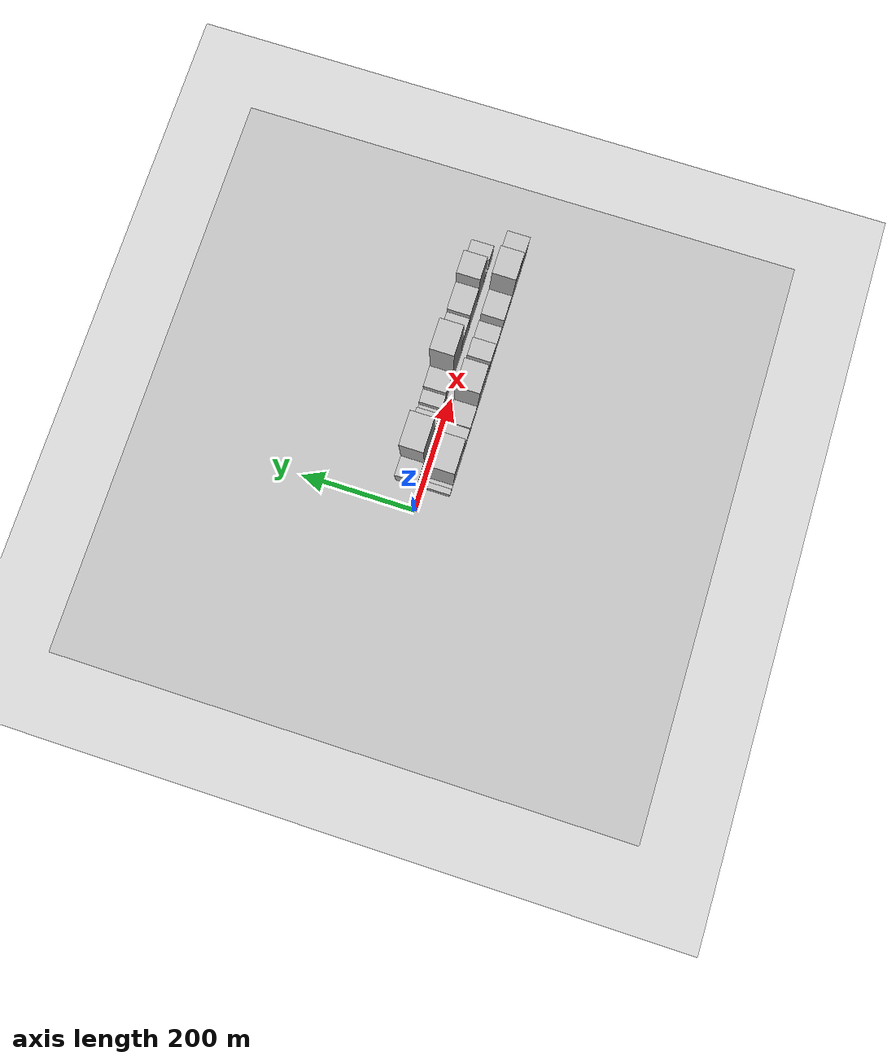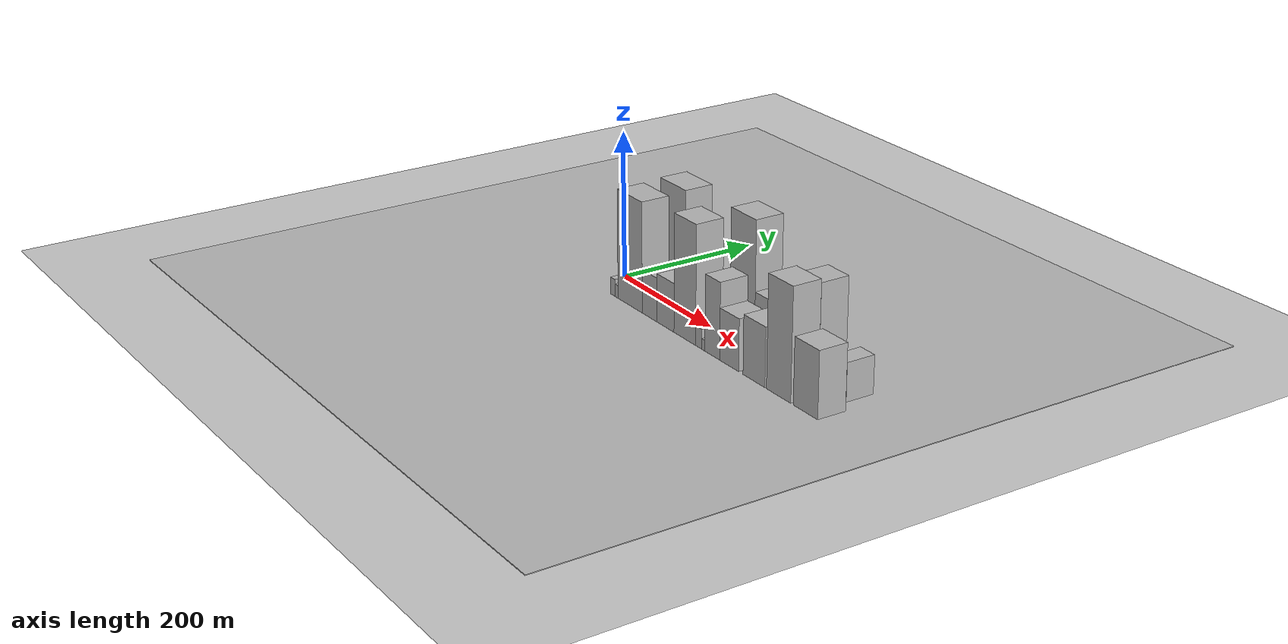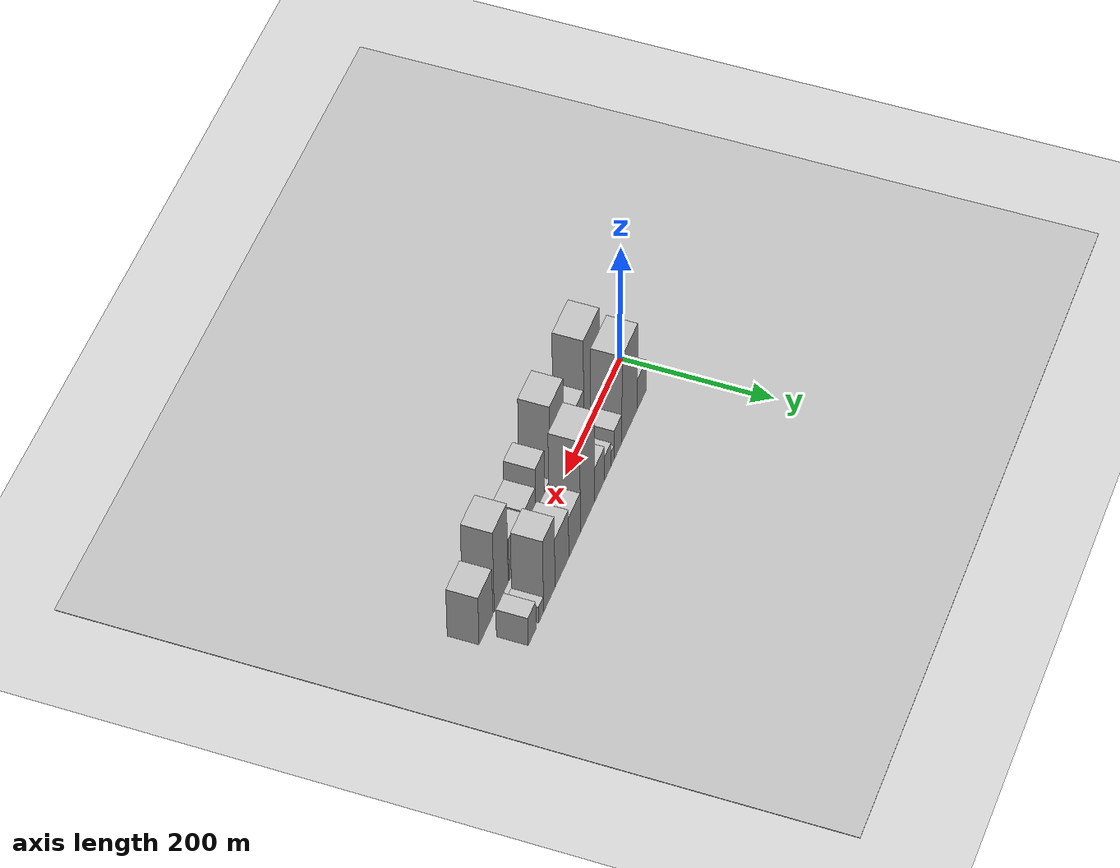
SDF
<?xml version="1.0" encoding="utf-8"?>

<sdf version="1.6">

   <world name="default">

      <gui fullscreen="0">

         <camera name="user_camera">

            <pose>-15 0 4.57585 0 0 0</pose>

            <view_controller>orbit</view_controller>

         </camera>

      </gui>

      <scene>

         <sky>

           <clouds>

             <speed>12</speed>

           </clouds>

         </sky>

         <ambient>0.4 0.4 0.4 1</ambient>

         <background>0.7 0.7 0.7 1</background>

         <shadows>1</shadows>

      </scene>

      <gravity>0 0 -9.8066</gravity>

      <magnetic_field>6e-06 2.3e-05 -4.2e-05</magnetic_field>

      <physics default="0" name="default_physics" type="ode">

         <ode>

            <solver>

               <type>quick</type>

               <iters>10</iters>

               <sor>1.0</sor>

               <use_dynamic_moi_rescaling>0</use_dynamic_moi_rescaling>

            </solver>

            <constraints>

               <cfm>0</cfm>

               <erp>0.2</erp>

               <contact_max_correcting_vel>100</contact_max_correcting_vel>

               <contact_surface_layer>0.001</contact_surface_layer>

            </constraints>

         </ode>

         <max_step_size>0.004</max_step_size>

         <real_time_factor>1</real_time_factor>

         <real_time_update_rate>250</real_time_update_rate>

      </physics>

      <light name="sun" type="directional">

         <cast_shadows>1</cast_shadows>

         <pose>0 0 10 0 0 0</pose>

         <diffuse>0.8 0.8 0.8 1</diffuse>

         <specular>0.2 0.2 0.2 1</specular>

         <attenuation>

            <range>1000</range>

            <constant>0.9</constant>

            <linear>0.01</linear>

            <quadratic>0.001</quadratic>

         </attenuation>

         <direction>-0.5 0.1 -0.9</direction>

      </light>

      <include>

         <name>ground_plane_1</name>

         <uri>model://HANNAS_ground_plane</uri>

         <pose>0 0 0  0 0 0</pose>

      </include>

      <include>

         <name>ground_plane_2</name>

         <uri>model://HANNAS_ground_plane</uri>

         <pose>100 0 0  0 0 0</pose>

      </include>

      <model name="building_1">

         <static>1</static>

         <pose frame="">56.9132 27.5000 0 0.000000 0.000000 1.570796</pose>

         <link name="link">

            <pose frame="">0 0 28.50 0 0 0</pose>

            <collision name="collision">

               <geometry>

                  <box>

                     <size>40.0000 33.8263 57.0000</size>

                  </box>

               </geometry>

               <max_contacts>10</max_contacts>

               <surface>

                  <contact>

                     <ode/>

                  </contact>

                  <bounce/>

                  <friction>

                     <torsional>

                        <ode/>

                     </torsional>

                     <ode/>

                  </friction>

               </surface>

            </collision>

            <visual name="visual">

               <cast_shadows>0</cast_shadows>

               <geometry>

                  <box>

                     <size>40.0000 33.8263 57.0000</size>

                  </box>

               </geometry>

               <material>

                  <script>

                     <uri>model://HANNAS_wall/materials/scripts</uri>

                     <uri>model://HANNAS_wall/materials/textures</uri>

                     <name>vrc/HANNAS_wall</name>

                  </script>

               </material>

            </visual>

            <self_collide>0</self_collide>

            <enable_wind>0</enable_wind>

            <kinematic>0</kinematic>

         </link>

      </model>

      <model name="building_2">

         <static>1</static>

         <pose frame="">102.4256 27.5000 0 0.000000 0.000000 1.570796</pose>

         <link name="link">

            <pose frame="">0 0 79.50 0 0 0</pose>

            <collision name="collision">

               <geometry>

                  <box>

                     <size>40.0000 57.1985 159.0000</size>

                  </box>

               </geometry>

               <max_contacts>10</max_contacts>

               <surface>

                  <contact>

                     <ode/>

                  </contact>

                  <bounce/>

                  <friction>

                     <torsional>

                        <ode/>

                     </torsional>

                     <ode/>

                  </friction>

               </surface>

            </collision>

            <visual name="visual">

               <cast_shadows>0</cast_shadows>

               <geometry>

                  <box>

                     <size>40.0000 57.1985 159.0000</size>

                  </box>

               </geometry>

               <material>

                  <script>

                     <uri>model://HANNAS_wall/materials/scripts</uri>

                     <uri>model://HANNAS_wall/materials/textures</uri>

                     <name>vrc/HANNAS_wall</name>

                  </script>

               </material>

            </visual>

            <self_collide>0</self_collide>

            <enable_wind>0</enable_wind>

            <kinematic>0</kinematic>

         </link>

      </model>

      <model name="building_3">

         <static>1</static>

         <pose frame="">145.0967 27.5000 0 0.000000 0.000000 1.570796</pose>

         <link name="link">

            <pose frame="">0 0 27.00 0 0 0</pose>

            <collision name="collision">

               <geometry>

                  <box>

                     <size>40.0000 28.1437 54.0000</size>

                  </box>

               </geometry>

               <max_contacts>10</max_contacts>

               <surface>

                  <contact>

                     <ode/>

                  </contact>

                  <bounce/>

                  <friction>

                     <torsional>

                        <ode/>

                     </torsional>

                     <ode/>

                  </friction>

               </surface>

            </collision>

            <visual name="visual">

               <cast_shadows>0</cast_shadows>

               <geometry>

                  <box>

                     <size>40.0000 28.1437 54.0000</size>

                  </box>

               </geometry>

               <material>

                  <script>

                     <uri>model://HANNAS_wall/materials/scripts</uri>

                     <uri>model://HANNAS_wall/materials/textures</uri>

                     <name>vrc/HANNAS_wall</name>

                  </script>

               </material>

            </visual>

            <self_collide>0</self_collide>

            <enable_wind>0</enable_wind>

            <kinematic>0</kinematic>

         </link>

      </model>

      <model name="building_4">

         <static>1</static>

         <pose frame="">164.7209 27.5000 0 0.000000 0.000000 1.570796</pose>

         <link name="link">

            <pose frame="">0 0 13.50 0 0 0</pose>

            <collision name="collision">

               <geometry>

                  <box>

                     <size>40.0000 11.1045 27.0000</size>

                  </box>

               </geometry>

               <max_contacts>10</max_contacts>

               <surface>

                  <contact>

                     <ode/>

                  </contact>

                  <bounce/>

                  <friction>

                     <torsional>

                        <ode/>

                     </torsional>

                     <ode/>

                  </friction>

               </surface>

            </collision>

            <visual name="visual">

               <cast_shadows>0</cast_shadows>

               <geometry>

                  <box>

                     <size>40.0000 11.1045 27.0000</size>

                  </box>

               </geometry>

               <material>

                  <script>

                     <uri>model://HANNAS_wall/materials/scripts</uri>

                     <uri>model://HANNAS_wall/materials/textures</uri>

                     <name>vrc/HANNAS_wall</name>

                  </script>

               </material>

            </visual>

            <self_collide>0</self_collide>

            <enable_wind>0</enable_wind>

            <kinematic>0</kinematic>

         </link>

      </model>

      <model name="building_5">

         <static>1</static>

         <pose frame="">181.9331 27.5000 0 0.000000 0.000000 1.570796</pose>

         <link name="link">

            <pose frame="">0 0 22.50 0 0 0</pose>

            <collision name="collision">

               <geometry>

                  <box>

                     <size>40.0000 23.3200 45.0000</size>

                  </box>

               </geometry>

               <max_contacts>10</max_contacts>

               <surface>

                  <contact>

                     <ode/>

                  </contact>

                  <bounce/>

                  <friction>

                     <torsional>

                        <ode/>

                     </torsional>

                     <ode/>

                  </friction>

               </surface>

            </collision>

            <visual name="visual">

               <cast_shadows>0</cast_shadows>

               <geometry>

                  <box>

                     <size>40.0000 23.3200 45.0000</size>

                  </box>

               </geometry>

               <material>

                  <script>

                     <uri>model://HANNAS_wall/materials/scripts</uri>

                     <uri>model://HANNAS_wall/materials/textures</uri>

                     <name>vrc/HANNAS_wall</name>

                  </script>

               </material>

            </visual>

            <self_collide>0</self_collide>

            <enable_wind>0</enable_wind>

            <kinematic>0</kinematic>

         </link>

      </model>

      <model name="building_6">

         <static>1</static>

         <pose frame="">211.7280 27.5000 0 0.000000 0.000000 1.570796</pose>

         <link name="link">

            <pose frame="">0 0 31.50 0 0 0</pose>

            <collision name="collision">

               <geometry>

                  <box>

                     <size>40.0000 36.2698 63.0000</size>

                  </box>

               </geometry>

               <max_contacts>10</max_contacts>

               <surface>

                  <contact>

                     <ode/>

                  </contact>

                  <bounce/>

                  <friction>

                     <torsional>

                        <ode/>

                     </torsional>

                     <ode/>

                  </friction>

               </surface>

            </collision>

            <visual name="visual">

               <cast_shadows>0</cast_shadows>

               <geometry>

                  <box>

                     <size>40.0000 36.2698 63.0000</size>

                  </box>

               </geometry>

               <material>

                  <script>

                     <uri>model://HANNAS_wall/materials/scripts</uri>

                     <uri>model://HANNAS_wall/materials/textures</uri>

                     <name>vrc/HANNAS_wall</name>

                  </script>

               </material>

            </visual>

            <self_collide>0</self_collide>

            <enable_wind>0</enable_wind>

            <kinematic>0</kinematic>

         </link>

      </model>

      <model name="building_7">

         <static>1</static>

         <pose frame="">255.7000 27.5000 0 0.000000 0.000000 1.570796</pose>

         <link name="link">

            <pose frame="">0 0 84.00 0 0 0</pose>

            <collision name="collision">

               <geometry>

                  <box>

                     <size>40.0000 51.6743 168.0000</size>

                  </box>

               </geometry>

               <max_contacts>10</max_contacts>

               <surface>

                  <contact>

                     <ode/>

                  </contact>

                  <bounce/>

                  <friction>

                     <torsional>

                        <ode/>

                     </torsional>

                     <ode/>

                  </friction>

               </surface>

            </collision>

            <visual name="visual">

               <cast_shadows>0</cast_shadows>

               <geometry>

                  <box>

                     <size>40.0000 51.6743 168.0000</size>

                  </box>

               </geometry>

               <material>

                  <script>

                     <uri>model://HANNAS_wall/materials/scripts</uri>

                     <uri>model://HANNAS_wall/materials/textures</uri>

                     <name>vrc/HANNAS_wall</name>

                  </script>

               </material>

            </visual>

            <self_collide>0</self_collide>

            <enable_wind>0</enable_wind>

            <kinematic>0</kinematic>

         </link>

      </model>

      <model name="building_8">

         <static>1</static>

         <pose frame="">302.0151 27.5000 0 0.000000 0.000000 1.570796</pose>

         <link name="link">

            <pose frame="">0 0 37.50 0 0 0</pose>

            <collision name="collision">

               <geometry>

                  <box>

                     <size>40.0000 40.9559 75.0000</size>

                  </box>

               </geometry>

               <max_contacts>10</max_contacts>

               <surface>

                  <contact>

                     <ode/>

                  </contact>

                  <bounce/>

                  <friction>

                     <torsional>

                        <ode/>

                     </torsional>

                     <ode/>

                  </friction>

               </surface>

            </collision>

            <visual name="visual">

               <cast_shadows>0</cast_shadows>

               <geometry>

                  <box>

                     <size>40.0000 40.9559 75.0000</size>

                  </box>

               </geometry>

               <material>

                  <script>

                     <uri>model://HANNAS_wall/materials/scripts</uri>

                     <uri>model://HANNAS_wall/materials/textures</uri>

                     <name>vrc/HANNAS_wall</name>

                  </script>

               </material>

            </visual>

            <self_collide>0</self_collide>

            <enable_wind>0</enable_wind>

            <kinematic>0</kinematic>

         </link>

      </model>

      <model name="building_9">

         <static>1</static>

         <pose frame="">346.8405 27.5000 0 0.000000 0.000000 1.570796</pose>

         <link name="link">

            <pose frame="">0 0 45.00 0 0 0</pose>

            <collision name="collision">

               <geometry>

                  <box>

                     <size>40.0000 48.6949 90.0000</size>

                  </box>

               </geometry>

               <max_contacts>10</max_contacts>

               <surface>

                  <contact>

                     <ode/>

                  </contact>

                  <bounce/>

                  <friction>

                     <torsional>

                        <ode/>

                     </torsional>

                     <ode/>

                  </friction>

               </surface>

            </collision>

            <visual name="visual">

               <cast_shadows>0</cast_shadows>

               <geometry>

                  <box>

                     <size>40.0000 48.6949 90.0000</size>

                  </box>

               </geometry>

               <material>

                  <script>

                     <uri>model://HANNAS_wall/materials/scripts</uri>

                     <uri>model://HANNAS_wall/materials/textures</uri>

                     <name>vrc/HANNAS_wall</name>

                  </script>

               </material>

            </visual>

            <self_collide>0</self_collide>

            <enable_wind>0</enable_wind>

            <kinematic>0</kinematic>

         </link>

      </model>

      <model name="building_10">

         <static>1</static>

         <pose frame="">391.1506 27.5000 0 0.000000 0.000000 1.570796</pose>

         <link name="link">

            <pose frame="">0 0 66.00 0 0 0</pose>

            <collision name="collision">

               <geometry>

                  <box>

                     <size>40.0000 39.9253 132.0000</size>

                  </box>

               </geometry>

               <max_contacts>10</max_contacts>

               <surface>

                  <contact>

                     <ode/>

                  </contact>

                  <bounce/>

                  <friction>

                     <torsional>

                        <ode/>

                     </torsional>

                     <ode/>

                  </friction>

               </surface>

            </collision>

            <visual name="visual">

               <cast_shadows>0</cast_shadows>

               <geometry>

                  <box>

                     <size>40.0000 39.9253 132.0000</size>

                  </box>

               </geometry>

               <material>

                  <script>

                     <uri>model://HANNAS_wall/materials/scripts</uri>

                     <uri>model://HANNAS_wall/materials/textures</uri>

                     <name>vrc/HANNAS_wall</name>

                  </script>

               </material>

            </visual>

            <self_collide>0</self_collide>

            <enable_wind>0</enable_wind>

            <kinematic>0</kinematic>

         </link>

      </model>

      <model name="building_11">

         <static>1</static>

         <pose frame="">419.5340 27.5000 0 0.000000 0.000000 1.570796</pose>

         <link name="link">

            <pose frame="">0 0 15.00 0 0 0</pose>

            <collision name="collision">

               <geometry>

                  <box>

                     <size>40.0000 16.8416 30.0000</size>

                  </box>

               </geometry>

               <max_contacts>10</max_contacts>

               <surface>

                  <contact>

                     <ode/>

                  </contact>

                  <bounce/>

                  <friction>

                     <torsional>

                        <ode/>

                     </torsional>

                     <ode/>

                  </friction>

               </surface>

            </collision>

            <visual name="visual">

               <cast_shadows>0</cast_shadows>

               <geometry>

                  <box>

                     <size>40.0000 16.8416 30.0000</size>

                  </box>

               </geometry>

               <material>

                  <script>

                     <uri>model://HANNAS_wall/materials/scripts</uri>

                     <uri>model://HANNAS_wall/materials/textures</uri>

                     <name>vrc/HANNAS_wall</name>

                  </script>

               </material>

            </visual>

            <self_collide>0</self_collide>

            <enable_wind>0</enable_wind>

            <kinematic>0</kinematic>

         </link>

      </model>

      <model name="building_12">

         <static>1</static>

         <pose frame="">450.2597 27.5000 0 0.000000 0.000000 1.570796</pose>

         <link name="link">

            <pose frame="">0 0 25.50 0 0 0</pose>

            <collision name="collision">

               <geometry>

                  <box>

                     <size>40.0000 26.6099 51.0000</size>

                  </box>

               </geometry>

               <max_contacts>10</max_contacts>

               <surface>

                  <contact>

                     <ode/>

                  </contact>

                  <bounce/>

                  <friction>

                     <torsional>

                        <ode/>

                     </torsional>

                     <ode/>

                  </friction>

               </surface>

            </collision>

            <visual name="visual">

               <cast_shadows>0</cast_shadows>

               <geometry>

                  <box>

                     <size>40.0000 26.6099 51.0000</size>

                  </box>

               </geometry>

               <material>

                  <script>

                     <uri>model://HANNAS_wall/materials/scripts</uri>

                     <uri>model://HANNAS_wall/materials/textures</uri>

                     <name>vrc/HANNAS_wall</name>

                  </script>

               </material>

            </visual>

            <self_collide>0</self_collide>

            <enable_wind>0</enable_wind>

            <kinematic>0</kinematic>

         </link>

      </model>

      <model name="building_13">

         <static>1</static>

         <pose frame="">45.2503 -27.5000 0 0.000000 0.000000 1.570796</pose>

         <link name="link">

            <pose frame="">0 0 12.00 0 0 0</pose>

            <collision name="collision">

               <geometry>

                  <box>

                     <size>40.0000 10.5006 24.0000</size>

                  </box>

               </geometry>

               <max_contacts>10</max_contacts>

               <surface>

                  <contact>

                     <ode/>

                  </contact>

                  <bounce/>

                  <friction>

                     <torsional>

                        <ode/>

                     </torsional>

                     <ode/>

                  </friction>

               </surface>

            </collision>

            <visual name="visual">

               <cast_shadows>0</cast_shadows>

               <geometry>

                  <box>

                     <size>40.0000 10.5006 24.0000</size>

                  </box>

               </geometry>

               <material>

                  <script>

                     <uri>model://HANNAS_wall/materials/scripts</uri>

                     <uri>model://HANNAS_wall/materials/textures</uri>

                     <name>vrc/HANNAS_wall</name>

                  </script>

               </material>

            </visual>

            <self_collide>0</self_collide>

            <enable_wind>0</enable_wind>

            <kinematic>0</kinematic>

         </link>

      </model>

      <model name="building_14">

         <static>1</static>

         <pose frame="">54.2591 -27.5000 0 0.000000 0.000000 1.570796</pose>

         <link name="link">

            <pose frame="">0 0 9.00 0 0 0</pose>

            <collision name="collision">

               <geometry>

                  <box>

                     <size>40.0000 7.5171 18.0000</size>

                  </box>

               </geometry>

               <max_contacts>10</max_contacts>

               <surface>

                  <contact>

                     <ode/>

                  </contact>

                  <bounce/>

                  <friction>

                     <torsional>

                        <ode/>

                     </torsional>

                     <ode/>

                  </friction>

               </surface>

            </collision>

            <visual name="visual">

               <cast_shadows>0</cast_shadows>

               <geometry>

                  <box>

                     <size>40.0000 7.5171 18.0000</size>

                  </box>

               </geometry>

               <material>

                  <script>

                     <uri>model://HANNAS_wall/materials/scripts</uri>

                     <uri>model://HANNAS_wall/materials/textures</uri>

                     <name>vrc/HANNAS_wall</name>

                  </script>

               </material>

            </visual>

            <self_collide>0</self_collide>

            <enable_wind>0</enable_wind>

            <kinematic>0</kinematic>

         </link>

      </model>

      <model name="building_15">

         <static>1</static>

         <pose frame="">86.5865 -27.5000 0 0.000000 0.000000 1.570796</pose>

         <link name="link">

            <pose frame="">0 0 75.00 0 0 0</pose>

            <collision name="collision">

               <geometry>

                  <box>

                     <size>40.0000 57.1376 150.0000</size>

                  </box>

               </geometry>

               <max_contacts>10</max_contacts>

               <surface>

                  <contact>

                     <ode/>

                  </contact>

                  <bounce/>

                  <friction>

                     <torsional>

                        <ode/>

                     </torsional>

                     <ode/>

                  </friction>

               </surface>

            </collision>

            <visual name="visual">

               <cast_shadows>0</cast_shadows>

               <geometry>

                  <box>

                     <size>40.0000 57.1376 150.0000</size>

                  </box>

               </geometry>

               <material>

                  <script>

                     <uri>model://HANNAS_wall/materials/scripts</uri>

                     <uri>model://HANNAS_wall/materials/textures</uri>

                     <name>vrc/HANNAS_wall</name>

                  </script>

               </material>

            </visual>

            <self_collide>0</self_collide>

            <enable_wind>0</enable_wind>

            <kinematic>0</kinematic>

         </link>

      </model>

      <model name="building_16">

         <static>1</static>

         <pose frame="">132.1267 -27.5000 0 0.000000 0.000000 1.570796</pose>

         <link name="link">

            <pose frame="">0 0 30.00 0 0 0</pose>

            <collision name="collision">

               <geometry>

                  <box>

                     <size>40.0000 33.9429 60.0000</size>

                  </box>

               </geometry>

               <max_contacts>10</max_contacts>

               <surface>

                  <contact>

                     <ode/>

                  </contact>

                  <bounce/>

                  <friction>

                     <torsional>

                        <ode/>

                     </torsional>

                     <ode/>

                  </friction>

               </surface>

            </collision>

            <visual name="visual">

               <cast_shadows>0</cast_shadows>

               <geometry>

                  <box>

                     <size>40.0000 33.9429 60.0000</size>

                  </box>

               </geometry>

               <material>

                  <script>

                     <uri>model://HANNAS_wall/materials/scripts</uri>

                     <uri>model://HANNAS_wall/materials/textures</uri>

                     <name>vrc/HANNAS_wall</name>

                  </script>

               </material>

            </visual>

            <self_collide>0</self_collide>

            <enable_wind>0</enable_wind>

            <kinematic>0</kinematic>

         </link>

      </model>

      <model name="building_17">

         <static>1</static>

         <pose frame="">168.1950 -27.5000 0 0.000000 0.000000 1.570796</pose>

         <link name="link">

            <pose frame="">0 0 33.00 0 0 0</pose>

            <collision name="collision">

               <geometry>

                  <box>

                     <size>40.0000 38.1938 66.0000</size>

                  </box>

               </geometry>

               <max_contacts>10</max_contacts>

               <surface>

                  <contact>

                     <ode/>

                  </contact>

                  <bounce/>

                  <friction>

                     <torsional>

                        <ode/>

                     </torsional>

                     <ode/>

                  </friction>

               </surface>

            </collision>

            <visual name="visual">

               <cast_shadows>0</cast_shadows>

               <geometry>

                  <box>

                     <size>40.0000 38.1938 66.0000</size>

                  </box>

               </geometry>

               <material>

                  <script>

                     <uri>model://HANNAS_wall/materials/scripts</uri>

                     <uri>model://HANNAS_wall/materials/textures</uri>

                     <name>vrc/HANNAS_wall</name>

                  </script>

               </material>

            </visual>

            <self_collide>0</self_collide>

            <enable_wind>0</enable_wind>

            <kinematic>0</kinematic>

         </link>

      </model>

      <model name="building_18">

         <static>1</static>

         <pose frame="">211.2279 -27.5000 0 0.000000 0.000000 1.570796</pose>

         <link name="link">

            <pose frame="">0 0 79.50 0 0 0</pose>

            <collision name="collision">

               <geometry>

                  <box>

                     <size>40.0000 47.8720 159.0000</size>

                  </box>

               </geometry>

               <max_contacts>10</max_contacts>

               <surface>

                  <contact>

                     <ode/>

                  </contact>

                  <bounce/>

                  <friction>

                     <torsional>

                        <ode/>

                     </torsional>

                     <ode/>

                  </friction>

               </surface>

            </collision>

            <visual name="visual">

               <cast_shadows>0</cast_shadows>

               <geometry>

                  <box>

                     <size>40.0000 47.8720 159.0000</size>

                  </box>

               </geometry>

               <material>

                  <script>

                     <uri>model://HANNAS_wall/materials/scripts</uri>

                     <uri>model://HANNAS_wall/materials/textures</uri>

                     <name>vrc/HANNAS_wall</name>

                  </script>

               </material>

            </visual>

            <self_collide>0</self_collide>

            <enable_wind>0</enable_wind>

            <kinematic>0</kinematic>

         </link>

      </model>

      <model name="building_19">

         <static>1</static>

         <pose frame="">241.7629 -27.5000 0 0.000000 0.000000 1.570796</pose>

         <link name="link">

            <pose frame="">0 0 13.50 0 0 0</pose>

            <collision name="collision">

               <geometry>

                  <box>

                     <size>40.0000 13.1978 27.0000</size>

                  </box>

               </geometry>

               <max_contacts>10</max_contacts>

               <surface>

                  <contact>

                     <ode/>

                  </contact>

                  <bounce/>

                  <friction>

                     <torsional>

                        <ode/>

                     </torsional>

                     <ode/>

                  </friction>

               </surface>

            </collision>

            <visual name="visual">

               <cast_shadows>0</cast_shadows>

               <geometry>

                  <box>

                     <size>40.0000 13.1978 27.0000</size>

                  </box>

               </geometry>

               <material>

                  <script>

                     <uri>model://HANNAS_wall/materials/scripts</uri>

                     <uri>model://HANNAS_wall/materials/textures</uri>

                     <name>vrc/HANNAS_wall</name>

                  </script>

               </material>

            </visual>

            <self_collide>0</self_collide>

            <enable_wind>0</enable_wind>

            <kinematic>0</kinematic>

         </link>

      </model>

      <model name="building_20">

         <static>1</static>

         <pose frame="">251.6789 -27.5000 0 0.000000 0.000000 1.570796</pose>

         <link name="link">

            <pose frame="">0 0 7.50 0 0 0</pose>

            <collision name="collision">

               <geometry>

                  <box>

                     <size>40.0000 6.6342 15.0000</size>

                  </box>

               </geometry>

               <max_contacts>10</max_contacts>

               <surface>

                  <contact>

                     <ode/>

                  </contact>

                  <bounce/>

                  <friction>

                     <torsional>

                        <ode/>

                     </torsional>

                     <ode/>

                  </friction>

               </surface>

            </collision>

            <visual name="visual">

               <cast_shadows>0</cast_shadows>

               <geometry>

                  <box>

                     <size>40.0000 6.6342 15.0000</size>

                  </box>

               </geometry>

               <material>

                  <script>

                     <uri>model://HANNAS_wall/materials/scripts</uri>

                     <uri>model://HANNAS_wall/materials/textures</uri>

                     <name>vrc/HANNAS_wall</name>

                  </script>

               </material>

            </visual>

            <self_collide>0</self_collide>

            <enable_wind>0</enable_wind>

            <kinematic>0</kinematic>

         </link>

      </model>

      <model name="building_21">

         <static>1</static>

         <pose frame="">270.8257 -27.5000 0 0.000000 0.000000 1.570796</pose>

         <link name="link">

            <pose frame="">0 0 51.00 0 0 0</pose>

            <collision name="collision">

               <geometry>

                  <box>

                     <size>40.0000 31.6596 102.0000</size>

                  </box>

               </geometry>

               <max_contacts>10</max_contacts>

               <surface>

                  <contact>

                     <ode/>

                  </contact>

                  <bounce/>

                  <friction>

                     <torsional>

                        <ode/>

                     </torsional>

                     <ode/>

                  </friction>

               </surface>

            </collision>

            <visual name="visual">

               <cast_shadows>0</cast_shadows>

               <geometry>

                  <box>

                     <size>40.0000 31.6596 102.0000</size>

                  </box>

               </geometry>

               <material>

                  <script>

                     <uri>model://HANNAS_wall/materials/scripts</uri>

                     <uri>model://HANNAS_wall/materials/textures</uri>

                     <name>vrc/HANNAS_wall</name>

                  </script>

               </material>

            </visual>

            <self_collide>0</self_collide>

            <enable_wind>0</enable_wind>

            <kinematic>0</kinematic>

         </link>

      </model>

      <model name="building_22">

         <static>1</static>

         <pose frame="">306.3983 -27.5000 0 0.000000 0.000000 1.570796</pose>

         <link name="link">

            <pose frame="">0 0 34.50 0 0 0</pose>

            <collision name="collision">

               <geometry>

                  <box>

                     <size>40.0000 39.4856 69.0000</size>

                  </box>

               </geometry>

               <max_contacts>10</max_contacts>

               <surface>

                  <contact>

                     <ode/>

                  </contact>

                  <bounce/>

                  <friction>

                     <torsional>

                        <ode/>

                     </torsional>

                     <ode/>

                  </friction>

               </surface>

            </collision>

            <visual name="visual">

               <cast_shadows>0</cast_shadows>

               <geometry>

                  <box>

                     <size>40.0000 39.4856 69.0000</size>

                  </box>

               </geometry>

               <material>

                  <script>

                     <uri>model://HANNAS_wall/materials/scripts</uri>

                     <uri>model://HANNAS_wall/materials/textures</uri>

                     <name>vrc/HANNAS_wall</name>

                  </script>

               </material>

            </visual>

            <self_collide>0</self_collide>

            <enable_wind>0</enable_wind>

            <kinematic>0</kinematic>

         </link>

      </model>

      <model name="building_23">

         <static>1</static>

         <pose frame="">357.3171 -27.5000 0 0.000000 0.000000 1.570796</pose>

         <link name="link">

            <pose frame="">0 0 39.00 0 0 0</pose>

            <collision name="collision">

               <geometry>

                  <box>

                     <size>40.0000 44.3521 78.0000</size>

                  </box>

               </geometry>

               <max_contacts>10</max_contacts>

               <surface>

                  <contact>

                     <ode/>

                  </contact>

                  <bounce/>

                  <friction>

                     <torsional>

                        <ode/>

                     </torsional>

                     <ode/>

                  </friction>

               </surface>

            </collision>

            <visual name="visual">

               <cast_shadows>0</cast_shadows>

               <geometry>

                  <box>

                     <size>40.0000 44.3521 78.0000</size>

                  </box>

               </geometry>

               <material>

                  <script>

                     <uri>model://HANNAS_wall/materials/scripts</uri>

                     <uri>model://HANNAS_wall/materials/textures</uri>

                     <name>vrc/HANNAS_wall</name>

                  </script>

               </material>

            </visual>

            <self_collide>0</self_collide>

            <enable_wind>0</enable_wind>

            <kinematic>0</kinematic>

         </link>

      </model>

      <model name="building_24">

         <static>1</static>

         <pose frame="">406.4058 -27.5000 0 0.000000 0.000000 1.570796</pose>

         <link name="link">

            <pose frame="">0 0 73.50 0 0 0</pose>

            <collision name="collision">

               <geometry>

                  <box>

                     <size>40.0000 47.8252 147.0000</size>

                  </box>

               </geometry>

               <max_contacts>10</max_contacts>

               <surface>

                  <contact>

                     <ode/>

                  </contact>

                  <bounce/>

                  <friction>

                     <torsional>

                        <ode/>

                     </torsional>

                     <ode/>

                  </friction>

               </surface>

            </collision>

            <visual name="visual">

               <cast_shadows>0</cast_shadows>

               <geometry>

                  <box>

                     <size>40.0000 47.8252 147.0000</size>

                  </box>

               </geometry>

               <material>

                  <script>

                     <uri>model://HANNAS_wall/materials/scripts</uri>

                     <uri>model://HANNAS_wall/materials/textures</uri>

                     <name>vrc/HANNAS_wall</name>

                  </script>

               </material>

            </visual>

            <self_collide>0</self_collide>

            <enable_wind>0</enable_wind>

            <kinematic>0</kinematic>

         </link>

      </model>

      <model name="building_25">

         <static>1</static>

         <pose frame="">458.6308 -27.5000 0 0.000000 0.000000 1.570796</pose>

         <link name="link">

            <pose frame="">0 0 43.50 0 0 0</pose>

            <collision name="collision">

               <geometry>

                  <box>

                     <size>40.0000 46.6248 87.0000</size>

                  </box>

               </geometry>

               <max_contacts>10</max_contacts>

               <surface>

                  <contact>

                     <ode/>

                  </contact>

                  <bounce/>

                  <friction>

                     <torsional>

                        <ode/>

                     </torsional>

                     <ode/>

                  </friction>

               </surface>

            </collision>

            <visual name="visual">

               <cast_shadows>0</cast_shadows>

               <geometry>

                  <box>

                     <size>40.0000 46.6248 87.0000</size>

                  </box>

               </geometry>

               <material>

                  <script>

                     <uri>model://HANNAS_wall/materials/scripts</uri>

                     <uri>model://HANNAS_wall/materials/textures</uri>

                     <name>vrc/HANNAS_wall</name>

                  </script>

               </material>

            </visual>

            <self_collide>0</self_collide>

            <enable_wind>0</enable_wind>

            <kinematic>0</kinematic>

         </link>

      </model>

   </world>

</sdf>

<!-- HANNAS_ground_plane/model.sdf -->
<sdf version="1.4">
<model name="HANNAS_ground_plane">
  <static>true</static>
    <link name="link">
      <collision name="collision">
        <geometry>
          <plane>
            <normal>0 0 1</normal>
            <size>1000 1000</size>
          </plane>
        </geometry>
        <surface>
          <friction>
            <ode>
              <mu>100</mu>
              <mu2>50</mu2>
            </ode>
          </friction>
        </surface>
      </collision>
      <visual name="visual">
        <cast_shadows>false</cast_shadows>
        <geometry>
          <plane>
            <normal>0 0 1</normal>
            <size>1000 1000</size>
          </plane>
        </geometry>
        <material>
          <script>
            <uri>model://HANNAS_ground_plane/materials/scripts/HANNAS_ground_plane.material</uri>
	    <uri>model://HANNAS_ground_plane/materials/textures</uri>
            <name>HANNASGroundPlane/Image</name>
          </script>
        </material>
      </visual>
    </link>
  </model>
</sdf>
